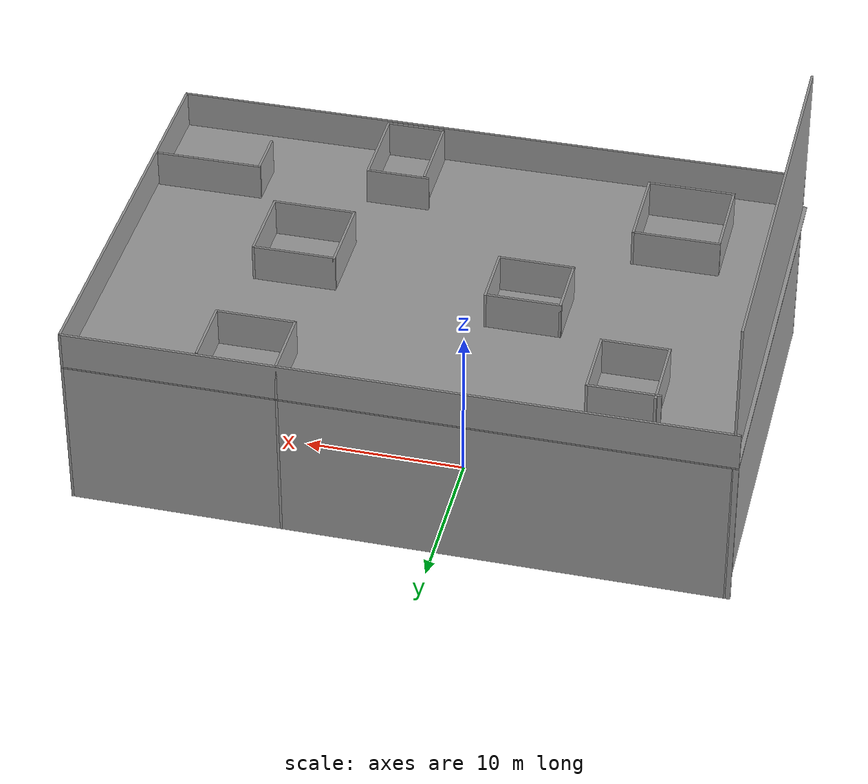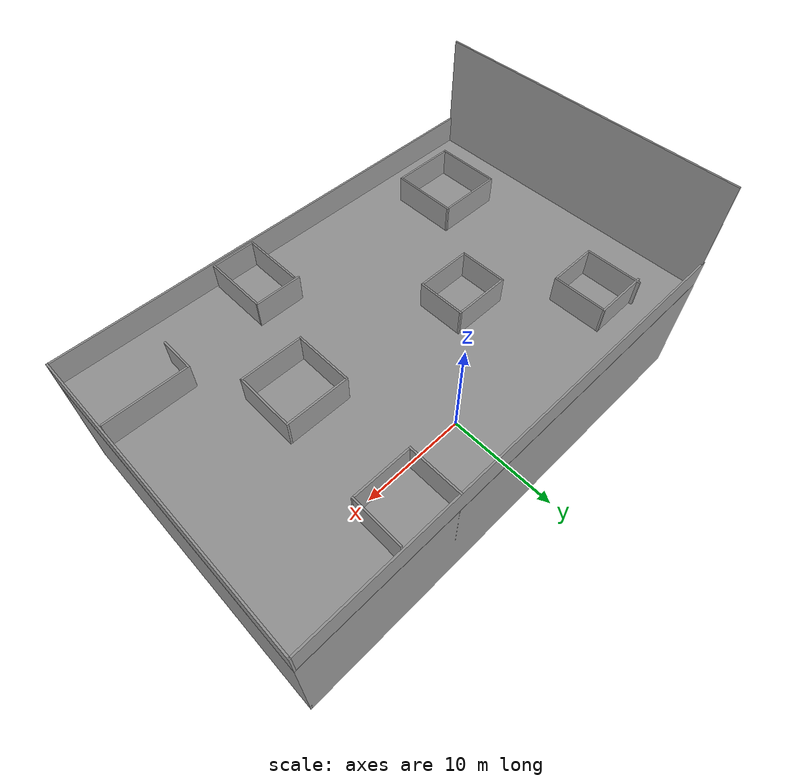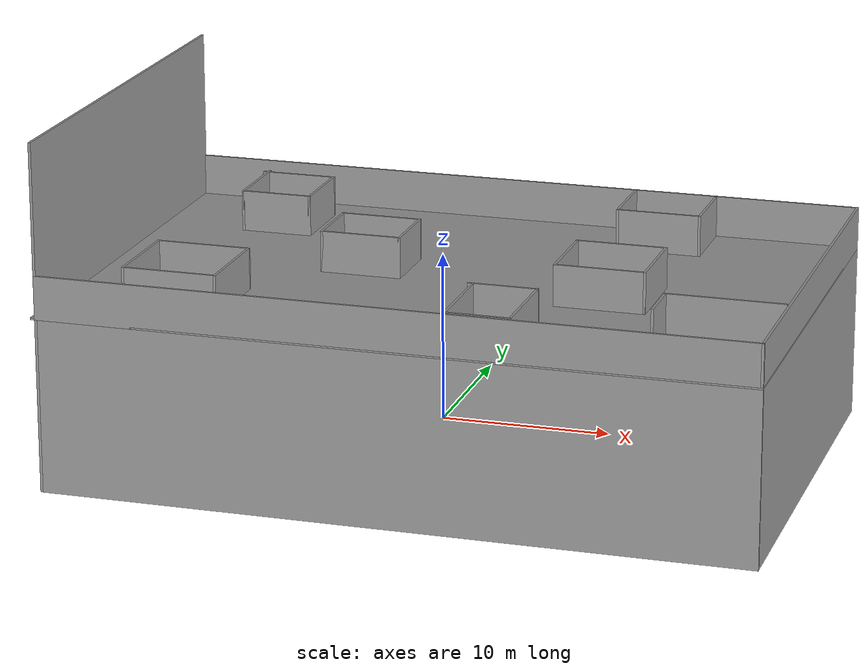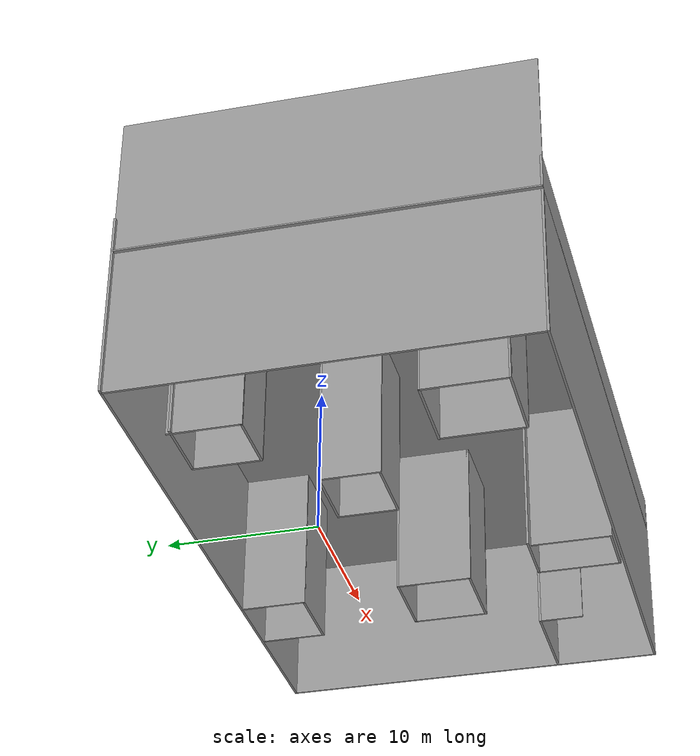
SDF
<?xml version='1.0'?>
<sdf version='1.7'>
  <model name='Untitled3'>
    <pose>2.345 -5.036 0 0 -0 0</pose>
    <link name='Floor_0'>
      <collision name='Floor_0_Collision'>
        <geometry>
          <box>
            <size>40.75 26.2504 0.1</size>
          </box>
        </geometry>
        <pose>0 0 0.05 0 -0 0</pose>
      </collision>
      <visual name='Floor_0_Visual'>
        <pose>0 0 0.05 0 -0 0</pose>
        <geometry>
          <box>
            <size>40.75 26.2504 0.1</size>
          </box>
        </geometry>
        <material>
          <script>
            <uri>file://media/materials/scripts/gazebo.material</uri>
            <name>Gazebo/Grey</name>
          </script>
          <ambient>1 1 1 1</ambient>
        </material>
        <meta>
          <layer>1</layer>
        </meta>
      </visual>
      <pose>3.2e-05 0.000207 10 0 -0 0</pose>
    </link>
    <link name='Wall_1'>
      <collision name='Wall_1_Collision'>
        <geometry>
          <box>
            <size>40.75 0.15 10</size>
          </box>
        </geometry>
        <pose>0 0 5 0 -0 0</pose>
      </collision>
      <visual name='Wall_1_Visual'>
        <pose>0 0 5 0 -0 0</pose>
        <geometry>
          <box>
            <size>40.75 0.15 10</size>
          </box>
        </geometry>
        <material>
          <script>
            <uri>file://media/materials/scripts/gazebo.material</uri>
            <name>Gazebo/Grey</name>
          </script>
          <ambient>1 1 1 1</ambient>
        </material>
        <meta>
          <layer>0</layer>
        </meta>
      </visual>
      <pose>-0 13.05 0 0 -0 0</pose>
    </link>
    <link name='Wall_11'>
      <collision name='Wall_11_Collision'>
        <geometry>
          <box>
            <size>4 0.15 10</size>
          </box>
        </geometry>
        <pose>0 0 5 0 -0 0</pose>
      </collision>
      <visual name='Wall_11_Visual'>
        <pose>0 0 5 0 -0 0</pose>
        <geometry>
          <box>
            <size>4 0.15 10</size>
          </box>
        </geometry>
        <material>
          <script>
            <uri>file://media/materials/scripts/gazebo.material</uri>
            <name>Gazebo/Grey</name>
          </script>
          <ambient>1 1 1 1</ambient>
        </material>
        <meta>
          <layer>0</layer>
        </meta>
      </visual>
      <pose>-7.887 1.548 0 0 -0 -1.5708</pose>
    </link>
    <link name='Wall_12'>
      <collision name='Wall_12_Collision'>
        <geometry>
          <box>
            <size>4.75 0.15 10</size>
          </box>
        </geometry>
        <pose>0 0 5 0 -0 0</pose>
      </collision>
      <visual name='Wall_12_Visual'>
        <pose>0 0 5 0 -0 0</pose>
        <geometry>
          <box>
            <size>4.75 0.15 10</size>
          </box>
        </geometry>
        <material>
          <script>
            <uri>file://media/materials/scripts/gazebo.material</uri>
            <name>Gazebo/Grey</name>
          </script>
          <ambient>1 1 1 1</ambient>
        </material>
        <meta>
          <layer>0</layer>
        </meta>
      </visual>
      <pose>-5.587 -0.377001 0 0 -0 0</pose>
    </link>
    <link name='Wall_13'>
      <collision name='Wall_13_Collision'>
        <geometry>
          <box>
            <size>4 0.15 10</size>
          </box>
        </geometry>
        <pose>0 0 5 0 -0 0</pose>
      </collision>
      <visual name='Wall_13_Visual'>
        <pose>0 0 5 0 -0 0</pose>
        <geometry>
          <box>
            <size>4 0.15 10</size>
          </box>
        </geometry>
        <material>
          <script>
            <uri>file://media/materials/scripts/gazebo.material</uri>
            <name>Gazebo/Grey</name>
          </script>
          <ambient>1 1 1 1</ambient>
        </material>
        <meta>
          <layer>0</layer>
        </meta>
      </visual>
      <pose>-3.287 1.548 0 0 -0 1.5708</pose>
    </link>
    <link name='Wall_14'>
      <collision name='Wall_14_Collision'>
        <geometry>
          <box>
            <size>4.75 0.15 10</size>
          </box>
        </geometry>
        <pose>0 0 5 0 -0 0</pose>
      </collision>
      <visual name='Wall_14_Visual'>
        <pose>0 0 5 0 -0 0</pose>
        <geometry>
          <box>
            <size>4.75 0.15 10</size>
          </box>
        </geometry>
        <material>
          <script>
            <uri>file://media/materials/scripts/gazebo.material</uri>
            <name>Gazebo/Grey</name>
          </script>
          <ambient>1 1 1 1</ambient>
        </material>
        <meta>
          <layer>0</layer>
        </meta>
      </visual>
      <pose>-5.587 3.473 0 0 -0 3.14159</pose>
    </link>
    <link name='Wall_16'>
      <collision name='Wall_16_Collision'>
        <geometry>
          <box>
            <size>5.5 0.15 10</size>
          </box>
        </geometry>
        <pose>0 0 5 0 -0 0</pose>
      </collision>
      <visual name='Wall_16_Visual'>
        <pose>0 0 5 0 -0 0</pose>
        <geometry>
          <box>
            <size>5.5 0.15 10</size>
          </box>
        </geometry>
        <material>
          <script>
            <uri>file://media/materials/scripts/gazebo.material</uri>
            <name>Gazebo/Grey</name>
          </script>
          <ambient>1 1 1 1</ambient>
        </material>
        <meta>
          <layer>0</layer>
        </meta>
      </visual>
      <pose>-16.073 -7.441 0 0 -0 -1.5708</pose>
    </link>
    <link name='Wall_17'>
      <collision name='Wall_17_Collision'>
        <geometry>
          <box>
            <size>5.50107 0.15 10</size>
          </box>
        </geometry>
        <pose>0 0 5 0 -0 0</pose>
      </collision>
      <visual name='Wall_17_Visual'>
        <pose>0 0 5 0 -0 0</pose>
        <geometry>
          <box>
            <size>5.50107 0.15 10</size>
          </box>
        </geometry>
        <material>
          <script>
            <uri>file://media/materials/scripts/gazebo.material</uri>
            <name>Gazebo/Grey</name>
          </script>
          <ambient>1 1 1 1</ambient>
        </material>
        <meta>
          <layer>0</layer>
        </meta>
      </visual>
      <pose>-13.398 -10.089 0 0 -0 0.010093</pose>
    </link>
    <link name='Wall_18'>
      <collision name='Wall_18_Collision'>
        <geometry>
          <box>
            <size>5.5 0.15 10</size>
          </box>
        </geometry>
        <pose>0 0 5 0 -0 0</pose>
      </collision>
      <visual name='Wall_18_Visual'>
        <pose>0 0 5 0 -0 0</pose>
        <geometry>
          <box>
            <size>5.5 0.15 10</size>
          </box>
        </geometry>
        <material>
          <script>
            <uri>file://media/materials/scripts/gazebo.material</uri>
            <name>Gazebo/Grey</name>
          </script>
          <ambient>1 1 1 1</ambient>
        </material>
        <meta>
          <layer>0</layer>
        </meta>
      </visual>
      <pose>-10.723 -7.387 0 0 -0 1.5708</pose>
    </link>
    <link name='Wall_19'>
      <collision name='Wall_19_Collision'>
        <geometry>
          <box>
            <size>5.50107 0.15 10</size>
          </box>
        </geometry>
        <pose>0 0 5 0 -0 0</pose>
      </collision>
      <visual name='Wall_19_Visual'>
        <pose>0 0 5 0 -0 0</pose>
        <geometry>
          <box>
            <size>5.50107 0.15 10</size>
          </box>
        </geometry>
        <material>
          <script>
            <uri>file://media/materials/scripts/gazebo.material</uri>
            <name>Gazebo/Grey</name>
          </script>
          <ambient>1 1 1 1</ambient>
        </material>
        <meta>
          <layer>0</layer>
        </meta>
      </visual>
      <pose>-13.398 -4.739 0 0 -0 -3.1315</pose>
    </link>
    <link name='Wall_2'>
      <collision name='Wall_2_Collision'>
        <geometry>
          <box>
            <size>26.25 0.15 10</size>
          </box>
        </geometry>
        <pose>0 0 5 0 -0 0</pose>
      </collision>
      <visual name='Wall_2_Visual'>
        <pose>0 0 5 0 -0 0</pose>
        <geometry>
          <box>
            <size>26.25 0.15 10</size>
          </box>
        </geometry>
        <material>
          <script>
            <uri>file://media/materials/scripts/gazebo.material</uri>
            <name>Gazebo/Grey</name>
          </script>
          <ambient>1 1 1 1</ambient>
        </material>
        <meta>
          <layer>0</layer>
        </meta>
      </visual>
      <pose>20.3 -0 0 0 -0 -1.5708</pose>
    </link>
    <link name='Wall_21'>
      <collision name='Wall_21_Collision'>
        <geometry>
          <box>
            <size>5.25 0.15 10</size>
          </box>
        </geometry>
        <pose>0 0 5 0 -0 0</pose>
      </collision>
      <visual name='Wall_21_Visual'>
        <pose>0 0 5 0 -0 0</pose>
        <geometry>
          <box>
            <size>5.25 0.15 10</size>
          </box>
        </geometry>
        <material>
          <script>
            <uri>file://media/materials/scripts/gazebo.material</uri>
            <name>Gazebo/Grey</name>
          </script>
          <ambient>1 1 1 1</ambient>
        </material>
        <meta>
          <layer>0</layer>
        </meta>
      </visual>
      <pose>3.134 -10.205 0 0 -0 -1.5708</pose>
    </link>
    <link name='Wall_22'>
      <collision name='Wall_22_Collision'>
        <geometry>
          <box>
            <size>3.75 0.15 10</size>
          </box>
        </geometry>
        <pose>0 0 5 0 -0 0</pose>
      </collision>
      <visual name='Wall_22_Visual'>
        <pose>0 0 5 0 -0 0</pose>
        <geometry>
          <box>
            <size>3.75 0.15 10</size>
          </box>
        </geometry>
        <material>
          <script>
            <uri>file://media/materials/scripts/gazebo.material</uri>
            <name>Gazebo/Grey</name>
          </script>
          <ambient>1 1 1 1</ambient>
        </material>
        <meta>
          <layer>0</layer>
        </meta>
      </visual>
      <pose>4.934 -12.755 0 0 -0 0</pose>
    </link>
    <link name='Wall_23'>
      <collision name='Wall_23_Collision'>
        <geometry>
          <box>
            <size>5.5 0.15 10</size>
          </box>
        </geometry>
        <pose>0 0 5 0 -0 0</pose>
      </collision>
      <visual name='Wall_23_Visual'>
        <pose>0 0 5 0 -0 0</pose>
        <geometry>
          <box>
            <size>5.5 0.15 10</size>
          </box>
        </geometry>
        <material>
          <script>
            <uri>file://media/materials/scripts/gazebo.material</uri>
            <name>Gazebo/Grey</name>
          </script>
          <ambient>1 1 1 1</ambient>
        </material>
        <meta>
          <layer>0</layer>
        </meta>
      </visual>
      <pose>6.734 -10.08 0 0 -0 1.5708</pose>
    </link>
    <link name='Wall_24'>
      <collision name='Wall_24_Collision'>
        <geometry>
          <box>
            <size>4 0.15 10</size>
          </box>
        </geometry>
        <pose>0 0 5 0 -0 0</pose>
      </collision>
      <visual name='Wall_24_Visual'>
        <pose>0 0 5 0 -0 0</pose>
        <geometry>
          <box>
            <size>4 0.15 10</size>
          </box>
        </geometry>
        <material>
          <script>
            <uri>file://media/materials/scripts/gazebo.material</uri>
            <name>Gazebo/Grey</name>
          </script>
          <ambient>1 1 1 1</ambient>
        </material>
        <meta>
          <layer>0</layer>
        </meta>
      </visual>
      <pose>4.809 -7.405 0 0 -0 3.14159</pose>
    </link>
    <link name='Wall_26'>
      <collision name='Wall_26_Collision'>
        <geometry>
          <box>
            <size>4.5 0.15 10</size>
          </box>
        </geometry>
        <pose>0 0 5 0 -0 0</pose>
      </collision>
      <visual name='Wall_26_Visual'>
        <pose>0 0 5 0 -0 0</pose>
        <geometry>
          <box>
            <size>4.5 0.15 10</size>
          </box>
        </geometry>
        <material>
          <script>
            <uri>file://media/materials/scripts/gazebo.material</uri>
            <name>Gazebo/Grey</name>
          </script>
          <ambient>1 1 1 1</ambient>
        </material>
        <meta>
          <layer>0</layer>
        </meta>
      </visual>
      <pose>7.093 10.875 0 0 -0 -1.5708</pose>
    </link>
    <link name='Wall_27'>
      <collision name='Wall_27_Collision'>
        <geometry>
          <box>
            <size>5 0.15 10</size>
          </box>
        </geometry>
        <pose>0 0 5 0 -0 0</pose>
      </collision>
      <visual name='Wall_27_Visual'>
        <pose>0 0 5 0 -0 0</pose>
        <geometry>
          <box>
            <size>5 0.15 10</size>
          </box>
        </geometry>
        <material>
          <script>
            <uri>file://media/materials/scripts/gazebo.material</uri>
            <name>Gazebo/Grey</name>
          </script>
          <ambient>1 1 1 1</ambient>
        </material>
        <meta>
          <layer>0</layer>
        </meta>
      </visual>
      <pose>9.518 8.7 0 0 -0 0</pose>
    </link>
    <link name='Wall_28'>
      <collision name='Wall_28_Collision'>
        <geometry>
          <box>
            <size>4.25 0.15 10</size>
          </box>
        </geometry>
        <pose>0 0 5 0 -0 0</pose>
      </collision>
      <visual name='Wall_28_Visual'>
        <pose>0 0 5 0 -0 0</pose>
        <geometry>
          <box>
            <size>4.25 0.15 10</size>
          </box>
        </geometry>
        <material>
          <script>
            <uri>file://media/materials/scripts/gazebo.material</uri>
            <name>Gazebo/Grey</name>
          </script>
          <ambient>1 1 1 1</ambient>
        </material>
        <meta>
          <layer>0</layer>
        </meta>
      </visual>
      <pose>11.943 10.75 0 0 -0 1.5708</pose>
    </link>
    <link name='Wall_3'>
      <collision name='Wall_3_Collision'>
        <geometry>
          <box>
            <size>40.5 0.15 10</size>
          </box>
        </geometry>
        <pose>0 0 5 0 -0 0</pose>
      </collision>
      <visual name='Wall_3_Visual'>
        <pose>0 0 5 0 -0 0</pose>
        <geometry>
          <box>
            <size>40.5 0.15 10</size>
          </box>
        </geometry>
        <material>
          <script>
            <uri>file://media/materials/scripts/gazebo.material</uri>
            <name>Gazebo/Grey</name>
          </script>
          <ambient>1 1 1 1</ambient>
        </material>
        <meta>
          <layer>0</layer>
        </meta>
      </visual>
      <pose>0.125 -13.05 0 0 -0 3.14159</pose>
    </link>
    <link name='Wall_30'>
      <collision name='Wall_30_Collision'>
        <geometry>
          <box>
            <size>5 0.15 10</size>
          </box>
        </geometry>
        <pose>0 0 5 0 -0 0</pose>
      </collision>
      <visual name='Wall_30_Visual'>
        <pose>0 0 5 0 -0 0</pose>
        <geometry>
          <box>
            <size>5 0.15 10</size>
          </box>
        </geometry>
        <material>
          <script>
            <uri>file://media/materials/scripts/gazebo.material</uri>
            <name>Gazebo/Grey</name>
          </script>
          <ambient>1 1 1 1</ambient>
        </material>
        <meta>
          <layer>0</layer>
        </meta>
      </visual>
      <pose>6.451 -0.396001 0 0 -0 -1.5708</pose>
    </link>
    <link name='Wall_31'>
      <collision name='Wall_31_Collision'>
        <geometry>
          <box>
            <size>5.25 0.15 10</size>
          </box>
        </geometry>
        <pose>0 0 5 0 -0 0</pose>
      </collision>
      <visual name='Wall_31_Visual'>
        <pose>0 0 5 0 -0 0</pose>
        <geometry>
          <box>
            <size>5.25 0.15 10</size>
          </box>
        </geometry>
        <material>
          <script>
            <uri>file://media/materials/scripts/gazebo.material</uri>
            <name>Gazebo/Grey</name>
          </script>
          <ambient>1 1 1 1</ambient>
        </material>
        <meta>
          <layer>0</layer>
        </meta>
      </visual>
      <pose>9.001 -2.821 0 0 -0 0</pose>
    </link>
    <link name='Wall_32'>
      <collision name='Wall_32_Collision'>
        <geometry>
          <box>
            <size>5 0.15 10</size>
          </box>
        </geometry>
        <pose>0 0 5 0 -0 0</pose>
      </collision>
      <visual name='Wall_32_Visual'>
        <pose>0 0 5 0 -0 0</pose>
        <geometry>
          <box>
            <size>5 0.15 10</size>
          </box>
        </geometry>
        <material>
          <script>
            <uri>file://media/materials/scripts/gazebo.material</uri>
            <name>Gazebo/Grey</name>
          </script>
          <ambient>1 1 1 1</ambient>
        </material>
        <meta>
          <layer>0</layer>
        </meta>
      </visual>
      <pose>11.551 -0.396001 0 0 -0 1.5708</pose>
    </link>
    <link name='Wall_33'>
      <collision name='Wall_33_Collision'>
        <geometry>
          <box>
            <size>5.25 0.15 10</size>
          </box>
        </geometry>
        <pose>0 0 5 0 -0 0</pose>
      </collision>
      <visual name='Wall_33_Visual'>
        <pose>0 0 5 0 -0 0</pose>
        <geometry>
          <box>
            <size>5.25 0.15 10</size>
          </box>
        </geometry>
        <material>
          <script>
            <uri>file://media/materials/scripts/gazebo.material</uri>
            <name>Gazebo/Grey</name>
          </script>
          <ambient>1 1 1 1</ambient>
        </material>
        <meta>
          <layer>0</layer>
        </meta>
      </visual>
      <pose>9.001 2.029 0 0 -0 3.14159</pose>
    </link>
    <link name='Wall_35'>
      <collision name='Wall_35_Collision'>
        <geometry>
          <box>
            <size>6.75 0.15 10</size>
          </box>
        </geometry>
        <pose>0 0 5 0 -0 0</pose>
      </collision>
      <visual name='Wall_35_Visual'>
        <pose>0 0 5 0 -0 0</pose>
        <geometry>
          <box>
            <size>6.75 0.15 10</size>
          </box>
        </geometry>
        <material>
          <script>
            <uri>file://media/materials/scripts/gazebo.material</uri>
            <name>Gazebo/Grey</name>
          </script>
          <ambient>1 1 1 1</ambient>
        </material>
        <meta>
          <layer>0</layer>
        </meta>
      </visual>
      <pose>16.794 -6.21 0 0 -0 3.14159</pose>
    </link>
    <link name='Wall_36'>
      <collision name='Wall_36_Collision'>
        <geometry>
          <box>
            <size>3 0.15 10</size>
          </box>
        </geometry>
        <pose>0 0 5 0 -0 0</pose>
      </collision>
      <visual name='Wall_36_Visual'>
        <pose>0 0 5 0 -0 0</pose>
        <geometry>
          <box>
            <size>3 0.15 10</size>
          </box>
        </geometry>
        <material>
          <script>
            <uri>file://media/materials/scripts/gazebo.material</uri>
            <name>Gazebo/Grey</name>
          </script>
          <ambient>1 1 1 1</ambient>
        </material>
        <meta>
          <layer>0</layer>
        </meta>
      </visual>
      <pose>13.494 -7.635 0 0 -0 -1.5708</pose>
    </link>
    <link name='Wall_38'>
      <collision name='Wall_38_Collision'>
        <geometry>
          <box>
            <size>40.75 0.15 2.5</size>
          </box>
        </geometry>
        <pose>0 0 1.25 0 -0 0</pose>
      </collision>
      <visual name='Wall_38_Visual'>
        <pose>0 0 1.25 0 -0 0</pose>
        <geometry>
          <box>
            <size>40.75 0.15 2.5</size>
          </box>
        </geometry>
        <material>
          <script>
            <uri>file://media/materials/scripts/gazebo.material</uri>
            <name>Gazebo/Grey</name>
          </script>
          <ambient>1 1 1 1</ambient>
        </material>
        <meta>
          <layer>1</layer>
        </meta>
      </visual>
      <pose>3.1e-05 13.0504 10 0 -0 0</pose>
    </link>
    <link name='Wall_39'>
      <collision name='Wall_39_Collision'>
        <geometry>
          <box>
            <size>26.25 0.15 2.5</size>
          </box>
        </geometry>
        <pose>0 0 1.25 0 -0 0</pose>
      </collision>
      <visual name='Wall_39_Visual'>
        <pose>0 0 1.25 0 -0 0</pose>
        <geometry>
          <box>
            <size>26.25 0.15 2.5</size>
          </box>
        </geometry>
        <material>
          <script>
            <uri>file://media/materials/scripts/gazebo.material</uri>
            <name>Gazebo/Grey</name>
          </script>
          <ambient>1 1 1 1</ambient>
        </material>
        <meta>
          <layer>1</layer>
        </meta>
      </visual>
      <pose>20.3 0.000416 10 0 -0 -1.5708</pose>
    </link>
    <link name='Wall_4'>
      <collision name='Wall_4_Collision'>
        <geometry>
          <box>
            <size>26.25 0.15 10</size>
          </box>
        </geometry>
        <pose>0 0 5 0 -0 0</pose>
      </collision>
      <visual name='Wall_4_Visual'>
        <pose>0 0 5 0 -0 0</pose>
        <geometry>
          <box>
            <size>26.25 0.15 10</size>
          </box>
        </geometry>
        <material>
          <script>
            <uri>file://media/materials/scripts/gazebo.material</uri>
            <name>Gazebo/Grey</name>
          </script>
          <ambient>1 1 1 1</ambient>
        </material>
        <meta>
          <layer>0</layer>
        </meta>
      </visual>
      <pose>-20.05 -0 0 0 -0 1.5708</pose>
    </link>
    <link name='Wall_40'>
      <collision name='Wall_40_Collision'>
        <geometry>
          <box>
            <size>40.5 0.15 2.5</size>
          </box>
        </geometry>
        <pose>0 0 1.25 0 -0 0</pose>
      </collision>
      <visual name='Wall_40_Visual'>
        <pose>0 0 1.25 0 -0 0</pose>
        <geometry>
          <box>
            <size>40.5 0.15 2.5</size>
          </box>
        </geometry>
        <material>
          <script>
            <uri>file://media/materials/scripts/gazebo.material</uri>
            <name>Gazebo/Grey</name>
          </script>
          <ambient>1 1 1 1</ambient>
        </material>
        <meta>
          <layer>1</layer>
        </meta>
      </visual>
      <pose>0.125015 -13.0498 10 0 -0 -3.14158</pose>
    </link>
    <link name='Wall_41'>
      <collision name='Wall_41_Collision'>
        <geometry>
          <box>
            <size>26.25 0.15 10</size>
          </box>
        </geometry>
        <pose>0 0 5 0 -0 0</pose>
      </collision>
      <visual name='Wall_41_Visual'>
        <pose>0 0 5 0 -0 0</pose>
        <geometry>
          <box>
            <size>26.25 0.15 10</size>
          </box>
        </geometry>
        <material>
          <script>
            <uri>file://media/materials/scripts/gazebo.material</uri>
            <name>Gazebo/Grey</name>
          </script>
          <ambient>1 1 1 1</ambient>
        </material>
        <meta>
          <layer>1</layer>
        </meta>
      </visual>
      <pose>-20.05 -1e-06 10 0 -0 1.5708</pose>
    </link>
    <link name='Wall_42'>
      <collision name='Wall_42_Collision'>
        <geometry>
          <box>
            <size>4.75 0.15 2.5</size>
          </box>
        </geometry>
        <pose>0 0 1.25 0 -0 0</pose>
      </collision>
      <visual name='Wall_42_Visual'>
        <pose>0 0 1.25 0 -0 0</pose>
        <geometry>
          <box>
            <size>4.75 0.15 2.5</size>
          </box>
        </geometry>
        <material>
          <script>
            <uri>file://media/materials/scripts/gazebo.material</uri>
            <name>Gazebo/Grey</name>
          </script>
          <ambient>1 1 1 1</ambient>
        </material>
        <meta>
          <layer>1</layer>
        </meta>
      </visual>
      <pose>-15.0032 8.50331 10 0 -0 -1.5708</pose>
    </link>
    <link name='Wall_43'>
      <collision name='Wall_43_Collision'>
        <geometry>
          <box>
            <size>4.25 0.15 2.5</size>
          </box>
        </geometry>
        <pose>0 0 1.25 0 -0 0</pose>
      </collision>
      <visual name='Wall_43_Visual'>
        <pose>0 0 1.25 0 -0 0</pose>
        <geometry>
          <box>
            <size>4.25 0.15 2.5</size>
          </box>
        </geometry>
        <material>
          <script>
            <uri>file://media/materials/scripts/gazebo.material</uri>
            <name>Gazebo/Grey</name>
          </script>
          <ambient>1 1 1 1</ambient>
        </material>
        <meta>
          <layer>1</layer>
        </meta>
      </visual>
      <pose>-12.9532 6.20331 10 0 -0 0</pose>
    </link>
    <link name='Wall_44'>
      <collision name='Wall_44_Collision'>
        <geometry>
          <box>
            <size>4.5 0.15 2.5</size>
          </box>
        </geometry>
        <pose>0 0 1.25 0 -0 0</pose>
      </collision>
      <visual name='Wall_44_Visual'>
        <pose>0 0 1.25 0 -0 0</pose>
        <geometry>
          <box>
            <size>4.5 0.15 2.5</size>
          </box>
        </geometry>
        <material>
          <script>
            <uri>file://media/materials/scripts/gazebo.material</uri>
            <name>Gazebo/Grey</name>
          </script>
          <ambient>1 1 1 1</ambient>
        </material>
        <meta>
          <layer>1</layer>
        </meta>
      </visual>
      <pose>-10.9032 8.37831 10 0 -0 1.5708</pose>
    </link>
    <link name='Wall_45'>
      <collision name='Wall_45_Collision'>
        <geometry>
          <box>
            <size>4.5 0.15 2.5</size>
          </box>
        </geometry>
        <pose>0 0 1.25 0 -0 0</pose>
      </collision>
      <visual name='Wall_45_Visual'>
        <pose>0 0 1.25 0 -0 0</pose>
        <geometry>
          <box>
            <size>4.5 0.15 2.5</size>
          </box>
        </geometry>
        <material>
          <script>
            <uri>file://media/materials/scripts/gazebo.material</uri>
            <name>Gazebo/Grey</name>
          </script>
          <ambient>1 1 1 1</ambient>
        </material>
        <meta>
          <layer>1</layer>
        </meta>
      </visual>
      <pose>-13.0782 10.5533 10 0 -0 3.14159</pose>
    </link>
    <link name='Wall_46'>
      <collision name='Wall_46_Collision'>
        <geometry>
          <box>
            <size>4 0.15 2.5</size>
          </box>
        </geometry>
        <pose>0 0 1.25 0 -0 0</pose>
      </collision>
      <visual name='Wall_46_Visual'>
        <pose>0 0 1.25 0 -0 0</pose>
        <geometry>
          <box>
            <size>4 0.15 2.5</size>
          </box>
        </geometry>
        <material>
          <script>
            <uri>file://media/materials/scripts/gazebo.material</uri>
            <name>Gazebo/Grey</name>
          </script>
          <ambient>1 1 1 1</ambient>
        </material>
        <meta>
          <layer>1</layer>
        </meta>
      </visual>
      <pose>-7.88739 1.54847 10 0 -0 -1.5708</pose>
    </link>
    <link name='Wall_47'>
      <collision name='Wall_47_Collision'>
        <geometry>
          <box>
            <size>4.75 0.15 2.5</size>
          </box>
        </geometry>
        <pose>0 0 1.25 0 -0 0</pose>
      </collision>
      <visual name='Wall_47_Visual'>
        <pose>0 0 1.25 0 -0 0</pose>
        <geometry>
          <box>
            <size>4.75 0.15 2.5</size>
          </box>
        </geometry>
        <material>
          <script>
            <uri>file://media/materials/scripts/gazebo.material</uri>
            <name>Gazebo/Grey</name>
          </script>
          <ambient>1 1 1 1</ambient>
        </material>
        <meta>
          <layer>1</layer>
        </meta>
      </visual>
      <pose>-5.58739 -0.376531 10 0 -0 0</pose>
    </link>
    <link name='Wall_48'>
      <collision name='Wall_48_Collision'>
        <geometry>
          <box>
            <size>4 0.15 2.5</size>
          </box>
        </geometry>
        <pose>0 0 1.25 0 -0 0</pose>
      </collision>
      <visual name='Wall_48_Visual'>
        <pose>0 0 1.25 0 -0 0</pose>
        <geometry>
          <box>
            <size>4 0.15 2.5</size>
          </box>
        </geometry>
        <material>
          <script>
            <uri>file://media/materials/scripts/gazebo.material</uri>
            <name>Gazebo/Grey</name>
          </script>
          <ambient>1 1 1 1</ambient>
        </material>
        <meta>
          <layer>1</layer>
        </meta>
      </visual>
      <pose>-3.28739 1.54847 10 0 -0 1.5708</pose>
    </link>
    <link name='Wall_49'>
      <collision name='Wall_49_Collision'>
        <geometry>
          <box>
            <size>4.75 0.15 2.5</size>
          </box>
        </geometry>
        <pose>0 0 1.25 0 -0 0</pose>
      </collision>
      <visual name='Wall_49_Visual'>
        <pose>0 0 1.25 0 -0 0</pose>
        <geometry>
          <box>
            <size>4.75 0.15 2.5</size>
          </box>
        </geometry>
        <material>
          <script>
            <uri>file://media/materials/scripts/gazebo.material</uri>
            <name>Gazebo/Grey</name>
          </script>
          <ambient>1 1 1 1</ambient>
        </material>
        <meta>
          <layer>1</layer>
        </meta>
      </visual>
      <pose>-5.58739 3.47347 10 0 -0 3.14159</pose>
    </link>
    <link name='Wall_50'>
      <collision name='Wall_50_Collision'>
        <geometry>
          <box>
            <size>5.5 0.15 2.5</size>
          </box>
        </geometry>
        <pose>0 0 1.25 0 -0 0</pose>
      </collision>
      <visual name='Wall_50_Visual'>
        <pose>0 0 1.25 0 -0 0</pose>
        <geometry>
          <box>
            <size>5.5 0.15 2.5</size>
          </box>
        </geometry>
        <material>
          <script>
            <uri>file://media/materials/scripts/gazebo.material</uri>
            <name>Gazebo/Grey</name>
          </script>
          <ambient>1 1 1 1</ambient>
        </material>
        <meta>
          <layer>1</layer>
        </meta>
      </visual>
      <pose>-16.0733 -7.44092 10 0 -0 -1.5708</pose>
    </link>
    <link name='Wall_51'>
      <collision name='Wall_51_Collision'>
        <geometry>
          <box>
            <size>5.5 0.15 2.5</size>
          </box>
        </geometry>
        <pose>0 0 1.25 0 -0 0</pose>
      </collision>
      <visual name='Wall_51_Visual'>
        <pose>0 0 1.25 0 -0 0</pose>
        <geometry>
          <box>
            <size>5.5 0.15 2.5</size>
          </box>
        </geometry>
        <material>
          <script>
            <uri>file://media/materials/scripts/gazebo.material</uri>
            <name>Gazebo/Grey</name>
          </script>
          <ambient>1 1 1 1</ambient>
        </material>
        <meta>
          <layer>1</layer>
        </meta>
      </visual>
      <pose>-13.3983 -10.1159 10 0 -0 0</pose>
    </link>
    <link name='Wall_52'>
      <collision name='Wall_52_Collision'>
        <geometry>
          <box>
            <size>5.5 0.15 2.5</size>
          </box>
        </geometry>
        <pose>0 0 1.25 0 -0 0</pose>
      </collision>
      <visual name='Wall_52_Visual'>
        <pose>0 0 1.25 0 -0 0</pose>
        <geometry>
          <box>
            <size>5.5 0.15 2.5</size>
          </box>
        </geometry>
        <material>
          <script>
            <uri>file://media/materials/scripts/gazebo.material</uri>
            <name>Gazebo/Grey</name>
          </script>
          <ambient>1 1 1 1</ambient>
        </material>
        <meta>
          <layer>1</layer>
        </meta>
      </visual>
      <pose>-10.7233 -7.44092 10 0 -0 1.5708</pose>
    </link>
    <link name='Wall_53'>
      <collision name='Wall_53_Collision'>
        <geometry>
          <box>
            <size>5.5 0.15 2.5</size>
          </box>
        </geometry>
        <pose>0 0 1.25 0 -0 0</pose>
      </collision>
      <visual name='Wall_53_Visual'>
        <pose>0 0 1.25 0 -0 0</pose>
        <geometry>
          <box>
            <size>5.5 0.15 2.5</size>
          </box>
        </geometry>
        <material>
          <script>
            <uri>file://media/materials/scripts/gazebo.material</uri>
            <name>Gazebo/Grey</name>
          </script>
          <ambient>1 1 1 1</ambient>
        </material>
        <meta>
          <layer>1</layer>
        </meta>
      </visual>
      <pose>-13.3983 -4.76592 10 0 -0 3.14159</pose>
    </link>
    <link name='Wall_54'>
      <collision name='Wall_54_Collision'>
        <geometry>
          <box>
            <size>5.25 0.15 2.5</size>
          </box>
        </geometry>
        <pose>0 0 1.25 0 -0 0</pose>
      </collision>
      <visual name='Wall_54_Visual'>
        <pose>0 0 1.25 0 -0 0</pose>
        <geometry>
          <box>
            <size>5.25 0.15 2.5</size>
          </box>
        </geometry>
        <material>
          <script>
            <uri>file://media/materials/scripts/gazebo.material</uri>
            <name>Gazebo/Grey</name>
          </script>
          <ambient>1 1 1 1</ambient>
        </material>
        <meta>
          <layer>1</layer>
        </meta>
      </visual>
      <pose>3.13413 -10.2051 10 0 -0 -1.5708</pose>
    </link>
    <link name='Wall_55'>
      <collision name='Wall_55_Collision'>
        <geometry>
          <box>
            <size>3.75 0.15 2.5</size>
          </box>
        </geometry>
        <pose>0 0 1.25 0 -0 0</pose>
      </collision>
      <visual name='Wall_55_Visual'>
        <pose>0 0 1.25 0 -0 0</pose>
        <geometry>
          <box>
            <size>3.75 0.15 2.5</size>
          </box>
        </geometry>
        <material>
          <script>
            <uri>file://media/materials/scripts/gazebo.material</uri>
            <name>Gazebo/Grey</name>
          </script>
          <ambient>1 1 1 1</ambient>
        </material>
        <meta>
          <layer>1</layer>
        </meta>
      </visual>
      <pose>4.93413 -12.7551 10 0 -0 0</pose>
    </link>
    <link name='Wall_56'>
      <collision name='Wall_56_Collision'>
        <geometry>
          <box>
            <size>5.5 0.15 2.5</size>
          </box>
        </geometry>
        <pose>0 0 1.25 0 -0 0</pose>
      </collision>
      <visual name='Wall_56_Visual'>
        <pose>0 0 1.25 0 -0 0</pose>
        <geometry>
          <box>
            <size>5.5 0.15 2.5</size>
          </box>
        </geometry>
        <material>
          <script>
            <uri>file://media/materials/scripts/gazebo.material</uri>
            <name>Gazebo/Grey</name>
          </script>
          <ambient>1 1 1 1</ambient>
        </material>
        <meta>
          <layer>1</layer>
        </meta>
      </visual>
      <pose>6.73413 -10.0801 10 0 -0 1.5708</pose>
    </link>
    <link name='Wall_57'>
      <collision name='Wall_57_Collision'>
        <geometry>
          <box>
            <size>4 0.15 2.5</size>
          </box>
        </geometry>
        <pose>0 0 1.25 0 -0 0</pose>
      </collision>
      <visual name='Wall_57_Visual'>
        <pose>0 0 1.25 0 -0 0</pose>
        <geometry>
          <box>
            <size>4 0.15 2.5</size>
          </box>
        </geometry>
        <material>
          <script>
            <uri>file://media/materials/scripts/gazebo.material</uri>
            <name>Gazebo/Grey</name>
          </script>
          <ambient>1 1 1 1</ambient>
        </material>
        <meta>
          <layer>1</layer>
        </meta>
      </visual>
      <pose>4.80913 -7.40505 10 0 -0 3.14159</pose>
    </link>
    <link name='Wall_58'>
      <collision name='Wall_58_Collision'>
        <geometry>
          <box>
            <size>4.5 0.15 2.5</size>
          </box>
        </geometry>
        <pose>0 0 1.25 0 -0 0</pose>
      </collision>
      <visual name='Wall_58_Visual'>
        <pose>0 0 1.25 0 -0 0</pose>
        <geometry>
          <box>
            <size>4.5 0.15 2.5</size>
          </box>
        </geometry>
        <material>
          <script>
            <uri>file://media/materials/scripts/gazebo.material</uri>
            <name>Gazebo/Grey</name>
          </script>
          <ambient>1 1 1 1</ambient>
        </material>
        <meta>
          <layer>1</layer>
        </meta>
      </visual>
      <pose>7.09331 10.8754 10 0 -0 -1.5708</pose>
    </link>
    <link name='Wall_59'>
      <collision name='Wall_59_Collision'>
        <geometry>
          <box>
            <size>5 0.15 2.5</size>
          </box>
        </geometry>
        <pose>0 0 1.25 0 -0 0</pose>
      </collision>
      <visual name='Wall_59_Visual'>
        <pose>0 0 1.25 0 -0 0</pose>
        <geometry>
          <box>
            <size>5 0.15 2.5</size>
          </box>
        </geometry>
        <material>
          <script>
            <uri>file://media/materials/scripts/gazebo.material</uri>
            <name>Gazebo/Grey</name>
          </script>
          <ambient>1 1 1 1</ambient>
        </material>
        <meta>
          <layer>1</layer>
        </meta>
      </visual>
      <pose>9.51831 8.70042 10 0 -0 0</pose>
    </link>
    <link name='Wall_6'>
      <collision name='Wall_6_Collision'>
        <geometry>
          <box>
            <size>4.75 0.15 10</size>
          </box>
        </geometry>
        <pose>0 0 5 0 -0 0</pose>
      </collision>
      <visual name='Wall_6_Visual'>
        <pose>0 0 5 0 -0 0</pose>
        <geometry>
          <box>
            <size>4.75 0.15 10</size>
          </box>
        </geometry>
        <material>
          <script>
            <uri>file://media/materials/scripts/gazebo.material</uri>
            <name>Gazebo/Grey</name>
          </script>
          <ambient>1 1 1 1</ambient>
        </material>
        <meta>
          <layer>0</layer>
        </meta>
      </visual>
      <pose>-15.003 8.503 0 0 -0 -1.5708</pose>
    </link>
    <link name='Wall_60'>
      <collision name='Wall_60_Collision'>
        <geometry>
          <box>
            <size>4.25 0.15 2.5</size>
          </box>
        </geometry>
        <pose>0 0 1.25 0 -0 0</pose>
      </collision>
      <visual name='Wall_60_Visual'>
        <pose>0 0 1.25 0 -0 0</pose>
        <geometry>
          <box>
            <size>4.25 0.15 2.5</size>
          </box>
        </geometry>
        <material>
          <script>
            <uri>file://media/materials/scripts/gazebo.material</uri>
            <name>Gazebo/Grey</name>
          </script>
          <ambient>1 1 1 1</ambient>
        </material>
        <meta>
          <layer>1</layer>
        </meta>
      </visual>
      <pose>11.9433 10.7504 10 0 -0 1.5708</pose>
    </link>
    <link name='Wall_61'>
      <collision name='Wall_61_Collision'>
        <geometry>
          <box>
            <size>5 0.15 2.5</size>
          </box>
        </geometry>
        <pose>0 0 1.25 0 -0 0</pose>
      </collision>
      <visual name='Wall_61_Visual'>
        <pose>0 0 1.25 0 -0 0</pose>
        <geometry>
          <box>
            <size>5 0.15 2.5</size>
          </box>
        </geometry>
        <material>
          <script>
            <uri>file://media/materials/scripts/gazebo.material</uri>
            <name>Gazebo/Grey</name>
          </script>
          <ambient>1 1 1 1</ambient>
        </material>
        <meta>
          <layer>1</layer>
        </meta>
      </visual>
      <pose>6.45128 -0.396099 10 0 -0 -1.5708</pose>
    </link>
    <link name='Wall_62'>
      <collision name='Wall_62_Collision'>
        <geometry>
          <box>
            <size>5.25 0.15 2.5</size>
          </box>
        </geometry>
        <pose>0 0 1.25 0 -0 0</pose>
      </collision>
      <visual name='Wall_62_Visual'>
        <pose>0 0 1.25 0 -0 0</pose>
        <geometry>
          <box>
            <size>5.25 0.15 2.5</size>
          </box>
        </geometry>
        <material>
          <script>
            <uri>file://media/materials/scripts/gazebo.material</uri>
            <name>Gazebo/Grey</name>
          </script>
          <ambient>1 1 1 1</ambient>
        </material>
        <meta>
          <layer>1</layer>
        </meta>
      </visual>
      <pose>9.00128 -2.8211 10 0 -0 0</pose>
    </link>
    <link name='Wall_63'>
      <collision name='Wall_63_Collision'>
        <geometry>
          <box>
            <size>5 0.15 2.5</size>
          </box>
        </geometry>
        <pose>0 0 1.25 0 -0 0</pose>
      </collision>
      <visual name='Wall_63_Visual'>
        <pose>0 0 1.25 0 -0 0</pose>
        <geometry>
          <box>
            <size>5 0.15 2.5</size>
          </box>
        </geometry>
        <material>
          <script>
            <uri>file://media/materials/scripts/gazebo.material</uri>
            <name>Gazebo/Grey</name>
          </script>
          <ambient>1 1 1 1</ambient>
        </material>
        <meta>
          <layer>1</layer>
        </meta>
      </visual>
      <pose>11.5513 -0.396099 10 0 -0 1.5708</pose>
    </link>
    <link name='Wall_64'>
      <collision name='Wall_64_Collision'>
        <geometry>
          <box>
            <size>5.25 0.15 2.5</size>
          </box>
        </geometry>
        <pose>0 0 1.25 0 -0 0</pose>
      </collision>
      <visual name='Wall_64_Visual'>
        <pose>0 0 1.25 0 -0 0</pose>
        <geometry>
          <box>
            <size>5.25 0.15 2.5</size>
          </box>
        </geometry>
        <material>
          <script>
            <uri>file://media/materials/scripts/gazebo.material</uri>
            <name>Gazebo/Grey</name>
          </script>
          <ambient>1 1 1 1</ambient>
        </material>
        <meta>
          <layer>1</layer>
        </meta>
      </visual>
      <pose>9.00128 2.0289 10 0 -0 3.14159</pose>
    </link>
    <link name='Wall_65'>
      <collision name='Wall_65_Collision'>
        <geometry>
          <box>
            <size>6.75 0.15 2.5</size>
          </box>
        </geometry>
        <pose>0 0 1.25 0 -0 0</pose>
      </collision>
      <visual name='Wall_65_Visual'>
        <pose>0 0 1.25 0 -0 0</pose>
        <geometry>
          <box>
            <size>6.75 0.15 2.5</size>
          </box>
        </geometry>
        <material>
          <script>
            <uri>file://media/materials/scripts/gazebo.material</uri>
            <name>Gazebo/Grey</name>
          </script>
          <ambient>1 1 1 1</ambient>
        </material>
        <meta>
          <layer>1</layer>
        </meta>
      </visual>
      <pose>16.7944 -6.21048 10 0 -0 3.14159</pose>
    </link>
    <link name='Wall_66'>
      <collision name='Wall_66_Collision'>
        <geometry>
          <box>
            <size>3 0.15 2.5</size>
          </box>
        </geometry>
        <pose>0 0 1.25 0 -0 0</pose>
      </collision>
      <visual name='Wall_66_Visual'>
        <pose>0 0 1.25 0 -0 0</pose>
        <geometry>
          <box>
            <size>3 0.15 2.5</size>
          </box>
        </geometry>
        <material>
          <script>
            <uri>file://media/materials/scripts/gazebo.material</uri>
            <name>Gazebo/Grey</name>
          </script>
          <ambient>1 1 1 1</ambient>
        </material>
        <meta>
          <layer>1</layer>
        </meta>
      </visual>
      <pose>13.4944 -7.63548 10 0 -0 -1.5708</pose>
    </link>
    <link name='Wall_7'>
      <collision name='Wall_7_Collision'>
        <geometry>
          <box>
            <size>4.25 0.15 10</size>
          </box>
        </geometry>
        <pose>0 0 5 0 -0 0</pose>
      </collision>
      <visual name='Wall_7_Visual'>
        <pose>0 0 5 0 -0 0</pose>
        <geometry>
          <box>
            <size>4.25 0.15 10</size>
          </box>
        </geometry>
        <material>
          <script>
            <uri>file://media/materials/scripts/gazebo.material</uri>
            <name>Gazebo/Grey</name>
          </script>
          <ambient>1 1 1 1</ambient>
        </material>
        <meta>
          <layer>0</layer>
        </meta>
      </visual>
      <pose>-12.953 6.203 0 0 -0 0</pose>
    </link>
    <link name='Wall_8'>
      <collision name='Wall_8_Collision'>
        <geometry>
          <box>
            <size>4.5 0.15 10</size>
          </box>
        </geometry>
        <pose>0 0 5 0 -0 0</pose>
      </collision>
      <visual name='Wall_8_Visual'>
        <pose>0 0 5 0 -0 0</pose>
        <geometry>
          <box>
            <size>4.5 0.15 10</size>
          </box>
        </geometry>
        <material>
          <script>
            <uri>file://media/materials/scripts/gazebo.material</uri>
            <name>Gazebo/Grey</name>
          </script>
          <ambient>1 1 1 1</ambient>
        </material>
        <meta>
          <layer>0</layer>
        </meta>
      </visual>
      <pose>-10.903 8.378 0 0 -0 1.5708</pose>
    </link>
    <link name='Wall_9'>
      <collision name='Wall_9_Collision'>
        <geometry>
          <box>
            <size>4.5 0.15 10</size>
          </box>
        </geometry>
        <pose>0 0 5 0 -0 0</pose>
      </collision>
      <visual name='Wall_9_Visual'>
        <pose>0 0 5 0 -0 0</pose>
        <geometry>
          <box>
            <size>4.5 0.15 10</size>
          </box>
        </geometry>
        <material>
          <script>
            <uri>file://media/materials/scripts/gazebo.material</uri>
            <name>Gazebo/Grey</name>
          </script>
          <ambient>1 1 1 1</ambient>
        </material>
        <meta>
          <layer>0</layer>
        </meta>
      </visual>
      <pose>-13.078 10.553 0 0 -0 3.14159</pose>
    </link>
    <static>1</static>
  </model>
</sdf>
